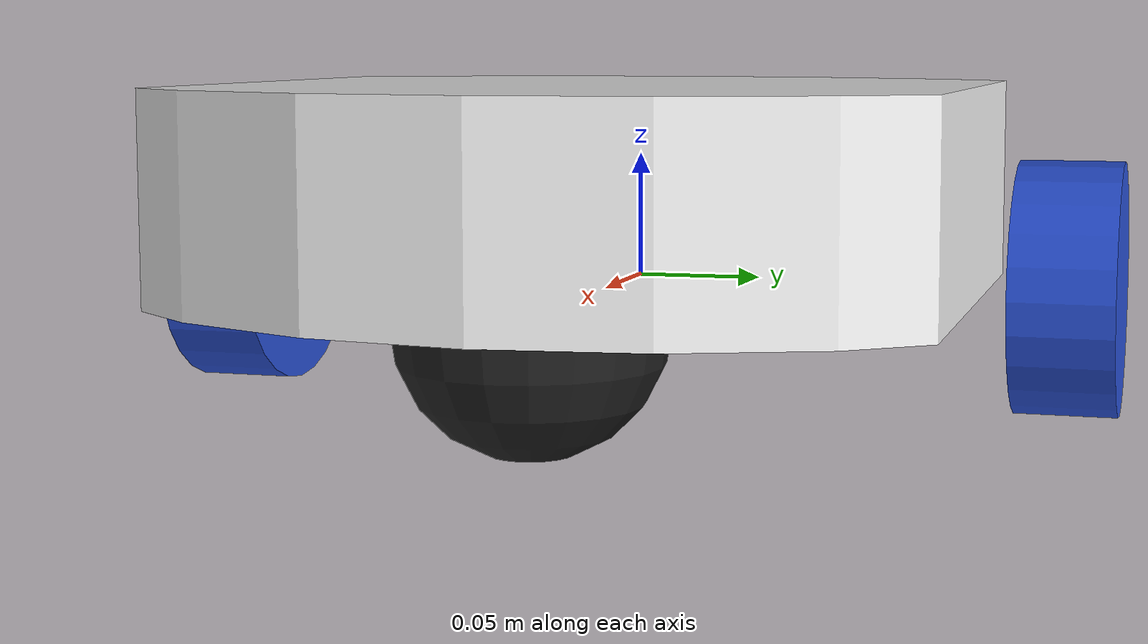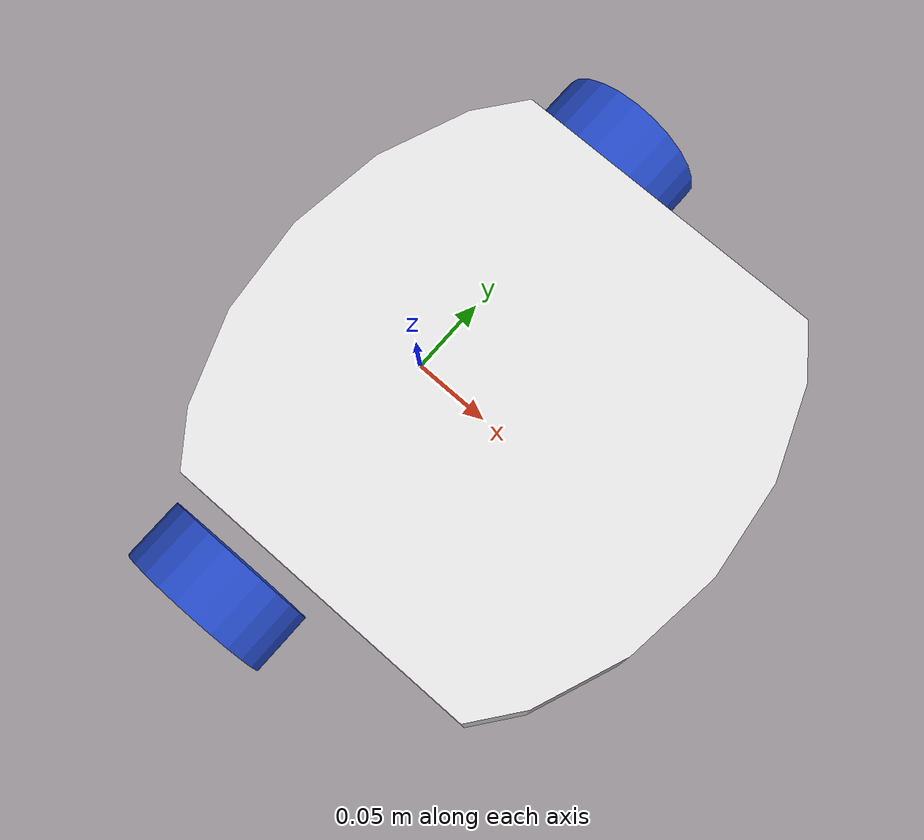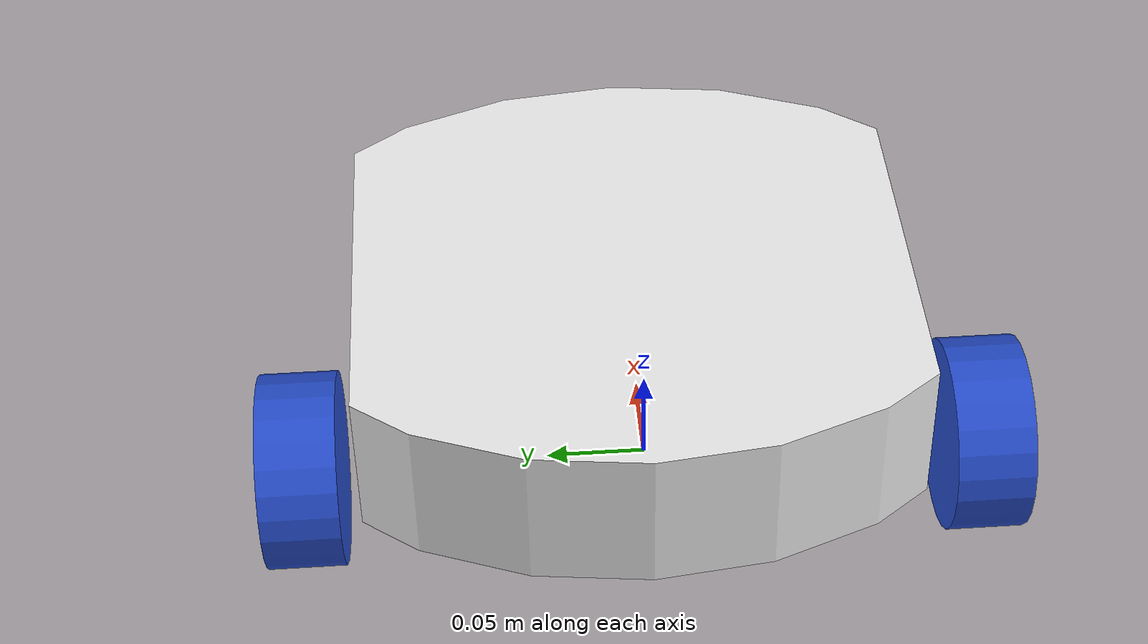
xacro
<?xml version="1.0"?>
<robot xmlns:xacro="http://www.ros.org/wiki/xacro">
    <xacro:include filename="colors.xacro" />

    <link name="base_link">
    </link>

    <link name="chassis">
        <visual>
            <origin xyz="0.12 0.055 0" rpy="0 0 ${pi/2}"/>
            <geometry>
                <!-- box size="0.3 0.3 0.15"/ -->
                <mesh filename="file://$(find diff_drive_bot)/meshes/body.stl" scale="0.0013 0.001 0.004"/>
            </geometry>
            <material name="white"/>
        </visual>
        <collision>
            <origin xyz="0.15 0 0.075" rpy="0 0 0"/>
            <geometry>
                <box size="0.3 0.3 0.15"/>
            </geometry>
        </collision>
        <xacro:inertial_box mass="0.5" x="0.3" y="0.3" z="0.15">
            <origin xyz="0.15 0 0.075" rpy="0 0 0"/>
        </xacro:inertial_box>
    </link>
    <gazebo reference="chassis">
        <material>Gazebo/White</material>
    </gazebo>

    <joint name="chassis_joint" type="fixed">
        <parent link="base_link"/>
        <child link="chassis"/>
        <origin xyz="-0.1 0 0"/>
    </joint>

    <!-- LEFT WHEEL -->

    <link name="left_wheel">
        <visual>
            <geometry>
                <cylinder length="0.04" radius="0.05" />/>
            </geometry>
            <material name="blue"/>
        </visual>
        <collision>
            <geometry>
                <cylinder length="0.04" radius="0.05" />/>
            </geometry>
            <material name="blue"/>
        </collision>
        <xacro:inertial_cylinder mass="0.1" length="0.05" radius="0.05">
            <origin xyz="0 0 0" rpy="0 0 0"/>
        </xacro:inertial_cylinder>
    </link>

    <joint name="left_wheel_joint" type="continuous">
        <parent link="base_link"/>
        <child link="left_wheel"/>
        <origin xyz="0 0.175 0" rpy="-${pi/2} 0 0"/>
        <axis xyz="0 0 1"/>
    </joint>

    <gazebo reference="left_wheel">
        <material>Gazebo/Blue</material>
    </gazebo>

    <!-- RIGHT WHEEL -->

    <link name="right_wheel">
        <visual>
            <geometry>
                <cylinder length="0.04" radius="0.05" />/>
            </geometry>
            <material name="blue"/>
        </visual>
        <collision>
            <geometry>
                <cylinder length="0.04" radius="0.05" />/>
            </geometry>
            <material name="blue"/>
        </collision>
        <xacro:inertial_cylinder mass="0.1" length="0.05" radius="0.05">
            <origin xyz="0 0 0" rpy="0 0 0"/>
        </xacro:inertial_cylinder>
    </link>

    <joint name="right_wheel_joint" type="continuous">
        <parent link="base_link"/>
        <child link="right_wheel"/>
        <origin xyz="0 -0.175 0" rpy="${pi/2} 0 0"/>
        <axis xyz="0 0 -1"/>
    </joint>

    <gazebo reference="right_wheel">
        <material>Gazebo/Blue</material>
    </gazebo>

    <!-- CASTER WHEEL -->

    <joint name="caster_wheel_joint" type="fixed">
        <parent link="chassis"/>
        <child link="caster_wheel"/>
        <origin xyz="0.24 0 0" rpy="0 0 0"/>
    </joint>

    <link name="caster_wheel">
        <visual>
            <geometry>
                <sphere radius="0.05" />
            </geometry>
            <material name="black"/>
        </visual>
        <collision>
            <geometry>
                <sphere radius="0.05" />
            </geometry>
            <material name="black"/>
        </collision>
        <xacro:inertial_sphere mass="0.1" radius="0.05">
            <origin xyz="0 0 0" rpy="0 0 0"/>
        </xacro:inertial_sphere>
    </link>
    <gazebo reference="caster_wheel">
        <material>Gazebo/Black</material>
    </gazebo>
    <gazebo reference="caster_wheel">
        <material>Gazebo/Black</material>
        <mu1 value="0.001"/>
        <mu2 value="0.001"/>
    </gazebo>

    <material name="red">
        <color rgba="1 0 0 1"/>
    </material>

</robot>
